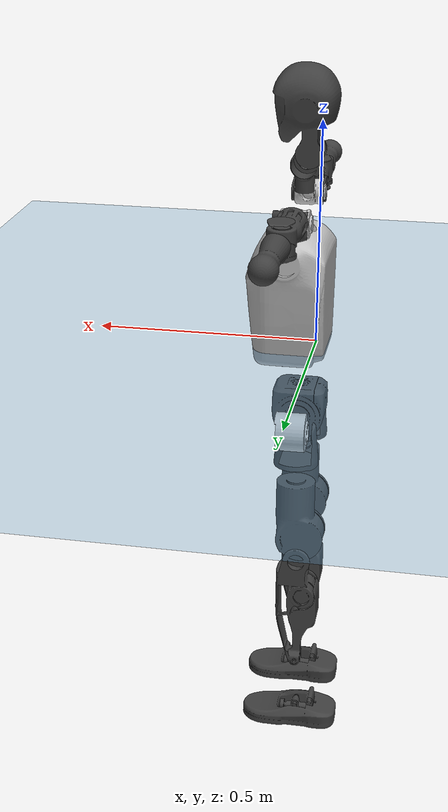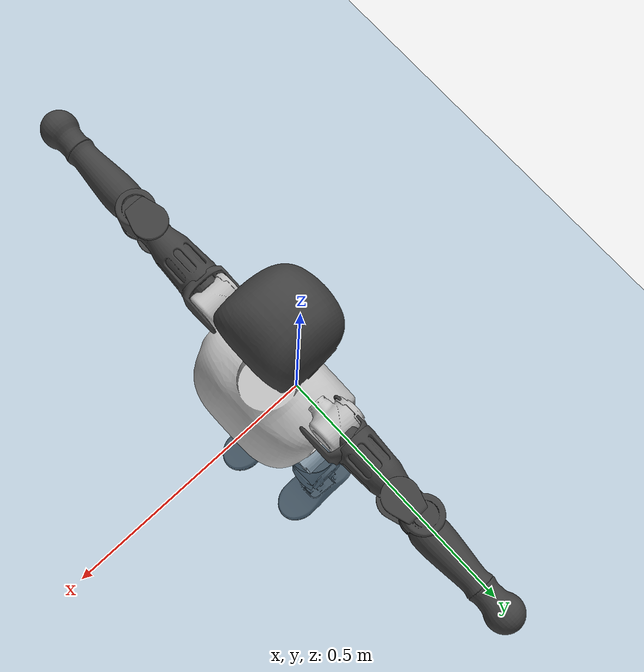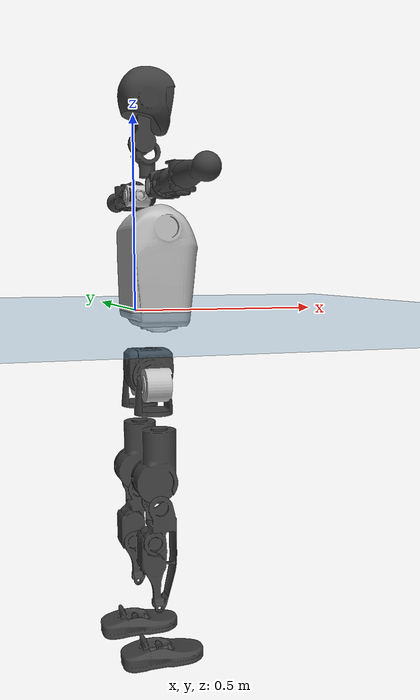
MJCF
<mujoco model="T1">
  <compiler angle="radian" assetdir="assets" balanceinertia="true" inertiafromgeom="false"/>

  <option timestep="0.005" density="1.2" viscosity="2e-05"/>

  <size nkey="1"/>

  <visual>
    <quality shadowsize="8192"/>
    <map shadowclip="0.5"/>
  </visual>

  <default>
    <default class="/">
      <joint armature="0.01" damping="0.01" frictionloss="0.1"/>
      <geom contype="0" conaffinity="0" group="1" solref="-1000 -80"/>
      <site size="0.01 0.005 0.005" group="5"/>
      <general forcelimited="true" biastype="affine" gainprm="25" biasprm="0 -25 -0.6"/>
      <default class="t1">
        <geom rgba="0.25 0.25 0.25 1"/>
        <default class="visual">
          <geom type="mesh" group="2"/>
        </default>
        <default class="collision">
          <geom group="3"/>
        </default>
        <default class="foot">
          <geom size="0.1115 0.05 0.015" type="box" condim="6" group="4" priority="1" solimp="0.015 1 0.015"/>
        </default>
        <default class="reward_collision_sphere">
          <geom group="5" rgba="1 0 0 1"/>
        </default>
      </default>
    </default>
  </default>

  <asset>
    <texture type="skybox" colorspace="auto" name="//unnamed_texture_0" builtin="gradient" rgb1="0.95 0.95 0.95" rgb2="0.95 0.95 0.95" width="100" height="600"/>
    <texture type="2d" colorspace="auto" name="texplane" builtin="checker" rgb1="0.345 0.575 0.748" rgb2="0.345 0.575 0.748" markrgb="1 1 1" width="512" height="512"/>
    <material name="MatPlane" class="/" texture="texplane" texuniform="true" texrepeat="2 2" specular="0.9"/>
    <mesh name="Trunk" class="/" file="Trunk.stl"/>
    <mesh name="H1" class="/" file="H1.stl"/>
    <mesh name="H2" class="/" file="H2.stl"/>
    <mesh name="AL1" class="/" file="AL1.stl"/>
    <mesh name="AL2" class="/" file="AL2.stl"/>
    <mesh name="AL3" class="/" file="AL3.stl"/>
    <mesh name="left_hand_link" class="/" file="left_hand_link.stl"/>
    <mesh name="AR1" class="/" file="AR1.stl"/>
    <mesh name="AR2" class="/" file="AR2.stl"/>
    <mesh name="AR3" class="/" file="AR3.stl"/>
    <mesh name="right_hand_link" class="/" file="right_hand_link.stl"/>
    <mesh name="Waist" class="/" file="Waist.stl"/>
    <mesh name="Hip_Pitch_Left" class="/" file="Hip_Pitch_Left.stl"/>
    <mesh name="Hip_Roll_Left" class="/" file="Hip_Roll_Left.stl"/>
    <mesh name="Hip_Yaw_Left" class="/" file="Hip_Yaw_Left.stl"/>
    <mesh name="Shank_Left" class="/" file="Shank_Left.stl"/>
    <mesh name="Ankle_Cross_Left" class="/" file="Ankle_Cross_Left.stl"/>
    <mesh name="left_foot_link" class="/" file="left_foot_link.stl"/>
    <mesh name="Hip_Pitch_Right" class="/" file="Hip_Pitch_Right.stl"/>
    <mesh name="Hip_Roll_Right" class="/" file="Hip_Roll_Right.stl"/>
    <mesh name="Hip_Yaw_Right" class="/" file="Hip_Yaw_Right.stl"/>
    <mesh name="Shank_Right" class="/" file="Shank_Right.stl"/>
    <mesh name="Ankle_Cross_Right" class="/" file="Ankle_Cross_Right.stl"/>
    <mesh name="right_foot_link" class="/" file="right_foot_link.stl"/>
  </asset>

  <worldbody>
    <geom name="floor" class="/" size="100 100 0.125" type="plane" group="0" material="MatPlane"/>
    <light name="toplight_shadow" class="/" pos="0 0 5" dir="0.0990148 0.0990148 -0.990148" type="directional" ambient="0.04 0.04 0.04" diffuse="0.55 0.55 0.55" specular="0.12 0.12 0.12"/>
    <light name="toplight_fill" class="/" pos="0 0 5" dir="0.0990148 0.0990148 -0.990148" type="directional" castshadow="false" ambient="0.04 0.04 0.04" diffuse="0.3 0.3 0.3" specular="0.08 0.08 0.08"/>
    <body name="trunk" childclass="t1" pos="0.00167185 -0.000759157 -0.00575929" quat="0.999999 -0.000786998 0.000725541 0.00033118">
      <inertial pos="0.0346861 0.0052246 0.148229" quat="0.999934 -0.00146803 -0.0105392 0.00442267" mass="9.05331" diaginertia="0.0038789 0.0198882 0.323297"/>
      <joint name="//unnamed_joint_0" type="free" armature="0" damping="0" frictionloss="0"/>
      <geom name="//unnamed_geom_1" class="visual" rgba="0.76 0.76 0.76 1" mesh="Trunk"/>
      <geom name="//unnamed_geom_2" class="collision" size="0.0685448 0.091393 0.13709" pos="0.0325855 0 0.171886" type="box"/>
      <geom name="//unnamed_geom_3" class="reward_collision_sphere" size="0.105102" pos="0.0325855 0 0.143239"/>
      <geom name="//unnamed_geom_4" class="reward_collision_sphere" size="0.013709" pos="0.0325855 0.0651366 0"/>
      <geom name="//unnamed_geom_5" class="reward_collision_sphere" size="0.013709" pos="0.0325855 -0.0651366 0"/>
      <geom name="//unnamed_geom_6" class="reward_collision_sphere" size="0.013709" pos="0.0325855 0.0819955 0.25783"/>
      <geom name="//unnamed_geom_7" class="reward_collision_sphere" size="0.013709" pos="0.0325855 -0.0819955 0.25783"/>
      <site name="imu" pos="0.0495397 -0.0515575 0.0483912" size="0.0091393"/>
      <camera name="track" pos="0 -1.53263 0" quat="0.707107 0.707107 0 0" mode="trackcom"/>
      <camera name="ego_camera" pos="0.0662572 0 0.601602" quat="-0.5 -0.5 0.5 0.5"/>
      <body name="H1" pos="0.0334921 -0.00075683 0.349399" quat="0.999989 -0.00253505 -0.00371066 -0.00163785">
        <inertial pos="-0.001308 -0.000377934 0.0803343" quat="0.762716 -0.0136209 -0.000343172 0.64659" mass="0.261884" diaginertia="1.11121e-05 5.19205e-05 0.000799738"/>
        <joint name="AAHead_yaw" pos="0 0 0" axis="0.00290386 0.0226747 0.999739" range="-1.54979 1.53397" armature="0.00412456" damping="0.0394807" frictionloss="0.0982032"/>
        <geom name="//unnamed_geom_8" class="visual" mesh="H1"/>
        <body name="H2" pos="-0.0116484 0.00473136 0.0885315" quat="0.999998 -0.000329766 -0.00145304 -0.00117601">
          <inertial pos="0.00166678 0.000977041 0.139583" quat="0.988433 0.107043 -0.0736556 -0.0782153" mass="0.493509" diaginertia="9.97201e-05 0.000504858 0.00996514"/>
          <joint name="Head_pitch" pos="0 0 0" axis="0.029461 -0.999537 -0.0076191" range="-1.22478 0.446693" armature="0.00840475" damping="0.020188" frictionloss="0.0871063"/>
          <geom name="//unnamed_geom_9" class="visual" mesh="H2"/>
          <geom name="//unnamed_geom_10" class="collision" size="0.0731144" pos="0.00543092 0 0.157563"/>
          <geom name="//unnamed_geom_11" class="reward_collision_sphere" size="0.0822537" pos="0.0108618 0 0.143239"/>
        </body>
      </body>
      <body name="AL1" pos="0.0355995 0.0782497 0.312494" quat="0.999994 0.00343886 0.000338545 -0.000211578">
        <inertial pos="-0.00142936 0.0265048 -0.000533296" quat="0.504037 0.49711 -0.502482 0.496326" mass="0.410541" diaginertia="6.02402e-05 0.000349696 0.00181036"/>
        <joint name="Left_Shoulder_Pitch" pos="0 0 0" axis="5.73021e-05 0.999906 0.0137404" stiffness="0.0115438" range="-3.36248 1.19885" armature="0.00969935" damping="0.0146799" frictionloss="0.115496"/>
        <geom name="//unnamed_geom_12" class="visual" rgba="0.76 0.76 0.76 1" mesh="AL1"/>
        <body name="AL2" pos="0.00751838 0.0322314 0.000838964" quat="1 -6.62042e-05 -2.08216e-07 0.000326147">
          <inertial pos="0.00429413 0.0298887 -0.00862875" quat="0.481408 0.516993 -0.487759 0.51289" mass="0.101168" diaginertia="1.7315e-05 9.41419e-05 0.000937494"/>
          <joint name="Left_Shoulder_Roll" pos="0 0 0" axis="-0.999757 0.000313118 0.022048" range="-1.76634 1.54865" armature="0.0131895" damping="0.030172" frictionloss="0.0901577"/>
          <geom name="//unnamed_geom_13" class="visual" mesh="AL2"/>
          <body name="AL3" pos="-0.00541832 0.0442274 0.0082726" quat="1 -0.000296669 0.000326186 5.28079e-05">
            <inertial pos="-0.00552976 0.065297 0.000515916" quat="0.707765 0.706206 -0.017051 0.00718751" mass="0.788802" diaginertia="0.000670122 0.00322134 0.00434049"/>
            <joint name="Left_Elbow_Pitch" pos="0 0 0" axis="0.0545989 -0.998491 0.00590741" stiffness="0.0527207" range="-2.46884 2.11972" armature="0.014309" damping="0.0651311" frictionloss="0.120093"/>
            <geom name="//unnamed_geom_14" class="visual" mesh="AL3"/>
            <geom name="//unnamed_geom_15" class="collision" size="0.0274179 0.0685448" pos="0 0.0383156 0" quat="0.707105 0.707108 0 0" type="cylinder"/>
            <geom name="//unnamed_geom_16" class="reward_collision_sphere" size="0.0329015"/>
            <body name="left_hand_link" pos="0.00741488 0.105903 -0.00230243" quat="0.999999 -0.000810751 -0.000732194 -0.00130546">
              <inertial pos="-0.000500224 0.0845191 -0.00349411" quat="0.708948 0.705261 0.000220436 -0.000165643" mass="0.25254" diaginertia="0.000341776 0.00190094 0.00133311"/>
              <joint name="Left_Elbow_Yaw" pos="0 0 0" axis="-0.0222618 0.0169838 0.999608" stiffness="0.00388325" range="-2.36933 0.0303968" armature="0.00423395" damping="0.012237" frictionloss="0.112878"/>
              <geom name="//unnamed_geom_17" class="visual" mesh="left_hand_link"/>
              <geom name="//unnamed_geom_18" class="collision" size="0.0274179 0.0799689" pos="0 0.0996207 0" quat="0.707105 0.707108 0 0" type="cylinder"/>
              <geom name="//unnamed_geom_19" class="reward_collision_sphere" size="0.0456965"/>
              <geom name="//unnamed_geom_20" class="reward_collision_sphere" size="0.0319876" pos="0 0.0842944 0"/>
              <geom name="//unnamed_geom_21" class="reward_collision_sphere" size="0.0319876" pos="0 0.164757 0"/>
            </body>
          </body>
        </body>
      </body>
      <body name="AR1" pos="0.0390898 -0.0856599 0.315188" quat="1 0.000178267 -0.000238797 -0.000248684">
        <inertial pos="0.0090487 -0.0370003 -0.00633005" quat="0.496909 0.455985 -0.511196 0.532765" mass="0.392833" diaginertia="6.9108e-05 0.000366178 0.0015786"/>
        <joint name="Right_Shoulder_Pitch" pos="0 0 0" axis="0.0149702 -0.999888 -0.000638071" range="-1.23282 3.31927" armature="0.0101339" damping="0" frictionloss="0.119685"/>
        <geom name="//unnamed_geom_22" class="visual" rgba="0.76 0.76 0.76 1" mesh="AR1"/>
        <body name="AR2" pos="0.000965684 -0.0340584 0.00139129" quat="1 -0.000563637 -0.000257789 -0.000634437">
          <inertial pos="0.000808855 -0.0283824 -0.0033655" quat="0.512792 0.486971 -0.51127 0.488372" mass="0.120015" diaginertia="1.93145e-05 8.13593e-05 0.00100597"/>
          <joint name="Right_Shoulder_Roll" pos="0 0 0" axis="-0.999922 0.0124757 0.000821951" range="-1.8199 1.3638" armature="0.0119203" damping="0" frictionloss="0.0936912"/>
          <geom name="//unnamed_geom_23" class="visual" mesh="AR2"/>
          <body name="AR3" pos="-0.00114899 -0.0470549 0.00139057" quat="1 -0.000220735 -0.000340409 5.22354e-05">
            <inertial pos="-0.00106775 -0.055782 -0.00731631" quat="0.70561 0.707857 0.0269133 -0.0181031" mass="0.78457" diaginertia="0.000588546 0.00371493 0.00346347"/>
            <joint name="Right_Elbow_Pitch" pos="0 0 0" axis="0.016429 0.99986 -0.00328496" range="-2.36949 2.40064" armature="0.00844337" damping="0" frictionloss="0.0891682"/>
            <geom name="//unnamed_geom_24" class="visual" mesh="AR3"/>
            <geom name="//unnamed_geom_25" class="collision" size="0.0274179 0.0685448" pos="0 -0.0383156 0" quat="0.707105 0.707108 0 0" type="cylinder"/>
            <geom name="//unnamed_geom_26" class="reward_collision_sphere" size="0.0329015"/>
            <body name="right_hand_link" pos="-0.000977483 -0.114532 0.000574221" quat="0.999999 -0.00023523 0.0015559 0.000143376">
              <inertial pos="0.0015316 -0.084577 0.0083467" quat="0.703036 0.711141 0.00244191 -0.00364912" mass="0.250909" diaginertia="0.000374396 0.00211362 0.00136755"/>
              <joint name="Right_Elbow_Yaw" pos="0 0 0" axis="-0.00395269 -0.00347993 0.999986" range="0.0144063 2.47635" armature="0.0101375" damping="0.0137218" frictionloss="0.0648524"/>
              <geom name="//unnamed_geom_27" class="visual" mesh="right_hand_link"/>
              <geom name="//unnamed_geom_28" class="collision" size="0.0274179 0.0799689" pos="0 -0.0996207 0" quat="0.707105 0.707108 0 0" type="cylinder"/>
              <geom name="//unnamed_geom_29" class="reward_collision_sphere" size="0.0456965"/>
              <geom name="//unnamed_geom_30" class="reward_collision_sphere" size="0.0319876" pos="0 -0.0842944 0"/>
              <geom name="//unnamed_geom_31" class="reward_collision_sphere" size="0.0319876" pos="0 -0.164757 0"/>
            </body>
          </body>
        </body>
      </body>
      <body name="Waist" pos="0.0313008 0.000600217 -0.163291" quat="0.999997 -0.000409195 -0.0010807 0.00195704">
        <inertial pos="0.0133005 -0.00648562 0.0110874" quat="0.983645 0.00503693 -0.179937 0.00634862" mass="2.0511" diaginertia="0.000294528 0.00144871 0.0279115"/>
        <joint name="Waist" pos="0 0 0" axis="-0.0378952 0.0341687 0.998697" range="-1.60595 1.61095" armature="0.0107835" damping="0" frictionloss="0.0839044"/>
        <geom name="//unnamed_geom_32" class="visual" mesh="Waist"/>
        <body name="Hip_Pitch_Left" pos="0.00921121 0.0763028 -0.00623389" quat="0.999982 0.00352354 0.00168949 0.00448806">
          <inertial pos="0.0076686 -0.0156077 -0.028329" quat="0.974626 0.222684 0.0218149 0.00636697" mass="0.841596" diaginertia="9.62737e-05 0.000439828 0.00746386"/>
          <joint name="Left_Hip_Pitch" pos="0 0 0" axis="-0.014882 0.999885 -0.00291105" range="-1.78876 1.6004" armature="0.0126984" damping="0" frictionloss="0.043662"/>
          <geom name="//unnamed_geom_33" class="visual" rgba="0.76 0.76 0.76 1" mesh="Hip_Pitch_Left"/>
          <body name="Hip_Roll_Left" pos="-0.0114883 0.00603711 -0.0170008" quat="0.999983 0.00502587 -0.00115159 0.00278946">
            <inertial pos="-0.00471743 0.00307337 -0.0673229" quat="0.703193 -0.00423108 -0.00747625 0.710948" mass="0.309488" diaginertia="8.10794e-05 0.000402575 0.0029957"/>
            <joint name="Left_Hip_Roll" pos="0 0 0" axis="-0.999999 -0.000882127 -0.00140376" range="-1.57376 0.232771" armature="0.00663334" damping="0" frictionloss="0.0889431"/>
            <geom name="//unnamed_geom_34" class="visual" mesh="Hip_Roll_Left"/>
            <geom name="//unnamed_geom_35" class="reward_collision_sphere" size="0.0502662"/>
            <body name="Hip_Yaw_Left" pos="-0.0037369 -0.00179133 -0.121628" quat="1 3.61549e-05 0.000137246 3.11952e-05">
              <inertial pos="-0.00555209 -0.0116275 -0.13733" quat="0.697207 -0.0282342 -0.0336067 0.715525" mass="1.61512" diaginertia="0.00119286 0.00655913 0.0155142"/>
              <joint name="Left_Hip_Yaw" pos="0 0 0" axis="-0.00923063 0.00400734 -0.999949" range="-1.06284 0.96294" armature="0.00933493" damping="0.00166679" frictionloss="0.0654548"/>
              <geom name="//unnamed_geom_36" class="visual" mesh="Hip_Yaw_Left"/>
              <geom name="//unnamed_geom_37" class="collision" size="0.0456965 0.0731144" type="cylinder"/>
              <body name="Shank_Left" pos="-0.0104428 0.00545867 -0.186916" quat="0.999993 -0.00167857 0.000179145 -0.00333556">
                <inertial pos="-0.00158857 0.00624918 -0.18093" quat="0.993551 2.34204e-05 -0.0513636 0.101086" mass="1.32688" diaginertia="0.00163531 0.00867685 0.011319"/>
                <joint name="Left_Knee_Pitch" pos="0 0 0" axis="-0.00800863 0.999967 -0.00135002" range="-0.0407829 2.50446" armature="0.00570638" damping="0.021354" frictionloss="0.0893657"/>
                <geom name="//unnamed_geom_38" class="visual" mesh="Shank_Left"/>
                <geom name="//unnamed_geom_39" class="collision" size="0.0456965 0.0685448" pos="0 0 -0.171886" type="cylinder"/>
                <geom name="//unnamed_geom_40" class="reward_collision_sphere" size="0.0594055"/>
                <body name="Ankle_Cross_Left" pos="-0.00464869 0.00720817 -0.40294" quat="0.999999 0.00106526 -0.00109788 0.000140214">
                  <inertial pos="-0.00236721 0.0025918 -0.0132225" quat="0.427211 0.578038 0.537384 0.441113" mass="0.0586449" diaginertia="1.23481e-06 6.68925e-06 6.79924e-05"/>
                  <joint name="Left_Ankle_Pitch" pos="0 0 0" axis="-0.00835232 0.999949 0.00573452" range="-0.666536 0.148161" armature="0.00678203" damping="0.0628465" frictionloss="0.0685907"/>
                  <geom name="//unnamed_geom_41" class="visual" mesh="Ankle_Cross_Left"/>
                  <body name="left_foot_link" pos="0.00438041 0.00439138 -0.00850527" quat="0.999987 -0.00489188 -0.000705403 0.00129958">
                    <inertial pos="0.000543983 -8.95786e-05 -0.0114668" quat="0.0276577 0.626514 -0.0219599 0.77861" mass="0.451282" diaginertia="0.000112671 0.00054701 0.0096108"/>
                    <joint name="Left_Ankle_Roll" pos="0 0 0" axis="-0.999136 -0.0329281 -0.0253558" range="-0.418884 0.229279" armature="0.00892624" damping="0.00664536" frictionloss="0.0362667"/>
                    <geom name="//unnamed_geom_42" class="visual" mesh="left_foot_link"/>
                    <geom name="left_foot" class="foot" size="0.101367 0.0624009 0.00754092" pos="0.00543092 0 -0.0214858"/>
                    <geom name="//unnamed_geom_44" class="reward_collision_sphere" size="0.0475244" pos="0.00543092 0 -0.0214858"/>
                    <geom name="//unnamed_geom_45" class="reward_collision_sphere" size="0.0274179" pos="0.0515937 -0.0176252 -0.0214858"/>
                    <geom name="//unnamed_geom_46" class="reward_collision_sphere" size="0.0274179" pos="-0.0380164 -0.0176252 -0.0214858"/>
                    <site name="left_foot" class="foot" pos="0.00543092 0 -0.0214858" size="0.0091393"/>
                  </body>
                </body>
              </body>
            </body>
          </body>
        </body>
        <body name="Hip_Pitch_Right" pos="0.00223734 -0.0809944 0.000127014" quat="1 -0.000102929 0.000293429 0.000112107">
          <inertial pos="0.00315071 0.00653273 -0.0222058" quat="0.973885 -0.218157 0.0350037 -0.0522594" mass="0.917104" diaginertia="9.77823e-05 0.000417813 0.0087937"/>
          <joint name="Right_Hip_Pitch" pos="0 0 0" axis="-0.00271581 -0.999996 0.000485983" stiffness="0.00263119" range="-1.54326 1.88761" armature="0.00752486" damping="0.0088255" frictionloss="0.098308"/>
          <geom name="//unnamed_geom_47" class="visual" rgba="0.76 0.76 0.76 1" mesh="Hip_Pitch_Right"/>
          <body name="Hip_Roll_Right" pos="-0.00544417 0.0029728 -0.0191821" quat="1 5.55883e-05 1.3629e-05 -5.12805e-06">
            <inertial pos="0.00241324 -0.00570331 -0.0773021" quat="0.701184 -0.00433419 -0.0389256 0.711904" mass="0.318387" diaginertia="8.35022e-05 0.000406142 0.0034091"/>
            <joint name="Right_Hip_Roll" pos="0 0 0" axis="-0.999994 -0.00257732 -0.00228243" stiffness="0.0601297" range="-0.205212 1.54539" armature="0.011478" damping="0.00673873" frictionloss="0.0976178"/>
            <geom name="//unnamed_geom_48" class="visual" mesh="Hip_Roll_Right"/>
            <geom name="//unnamed_geom_49" class="reward_collision_sphere" size="0.0502662"/>
            <body name="Hip_Yaw_Right" pos="0.00848792 -0.0113452 -0.116736" quat="1 0.0003561 -0.000111672 -0.000310834">
              <inertial pos="0.0031913 0.000941445 -0.117062" quat="0.707628 -0.0581609 -0.00833196 0.704138" mass="1.48796" diaginertia="0.00124287 0.0067707 0.0158165"/>
              <joint name="Right_Hip_Yaw" pos="0 0 0" axis="-0.00207187 -0.000154849 -0.999998" stiffness="0.00798693" range="-1.17468 1.09463" armature="0.009756" damping="0.00991938" frictionloss="0.0918165"/>
              <geom name="//unnamed_geom_50" class="visual" mesh="Hip_Yaw_Right"/>
              <geom name="//unnamed_geom_51" class="collision" size="0.0456965 0.0731144" type="cylinder"/>
              <body name="Shank_Right" pos="-0.00849202 -0.00692129 -0.198397" quat="0.999999 -0.00053645 0.00114706 0.000412717">
                <inertial pos="-0.0151907 0.000517933 -0.172547" quat="0.999781 -0.0202902 -0.000206012 -0.0050939" mass="1.61666" diaginertia="0.00181833 0.0090741 0.0129865"/>
                <joint name="Right_Knee_Pitch" pos="0 0 0" axis="-0.00997763 -0.999333 -0.0351397" range="-2.36982 -0.0119467" armature="0.00697336" damping="0.0294054" frictionloss="0.0584857"/>
                <geom name="//unnamed_geom_52" class="visual" mesh="Shank_Right"/>
                <geom name="//unnamed_geom_53" class="collision" size="0.0456965 0.0685448" pos="0 0 -0.171886" type="cylinder"/>
                <geom name="//unnamed_geom_54" class="reward_collision_sphere" size="0.0594055"/>
                <body name="Ankle_Cross_Right" pos="0.00414212 0.010466 -0.398833" quat="0.999988 -0.0016908 -0.00363726 -0.00284759">
                  <inertial pos="-0.00194037 0.00184787 -0.0120648" quat="0.438306 0.546961 0.556243 0.446446" mass="0.055792" diaginertia="1.49338e-06 6.56072e-06 6.87753e-05"/>
                  <joint name="Right_Ankle_Pitch" pos="0 0 0" axis="-0.0127263 -0.999918 -0.00151101" range="-0.276093 0.658346" armature="0.00849083" damping="0" frictionloss="0.0930088"/>
                  <geom name="//unnamed_geom_55" class="visual" mesh="Ankle_Cross_Right"/>
                  <body name="right_foot_link" pos="0.000666167 -0.00192422 -0.0117343" quat="0.999993 -9.45072e-05 0.000312078 0.00368477">
                    <inertial pos="0.0071045 0.000210423 -0.013078" quat="-0.00195991 0.626839 0.000436617 0.779146" mass="0.517059" diaginertia="0.000142463 0.000672112 0.013448"/>
                    <joint name="Right_Ankle_Roll" pos="0 0 0" axis="-0.999925 -0.00481737 -0.0112772" range="-0.534908 0.516706" armature="0.00844911" damping="0.0119234" frictionloss="0.0888338"/>
                    <geom name="//unnamed_geom_56" class="visual" mesh="right_foot_link"/>
                    <geom name="right_foot" class="foot" size="0.0978808 0.0587794 0.0128836" pos="0.00543092 0 -0.0214858"/>
                    <geom name="//unnamed_geom_58" class="reward_collision_sphere" size="0.0365572"/>
                    <geom name="//unnamed_geom_59" class="reward_collision_sphere" size="0.0274179" pos="0.00543092 0 -0.0214858"/>
                    <geom name="//unnamed_geom_60" class="reward_collision_sphere" size="0.0274179" pos="0.0515937 0.0176252 -0.0214858"/>
                    <geom name="//unnamed_geom_61" class="reward_collision_sphere" size="0.0274179" pos="-0.0380164 0.0176252 -0.0214858"/>
                    <site name="right_foot" class="foot" pos="0.00543092 0 -0.0214858" size="0.0091393"/>
                  </body>
                </body>
              </body>
            </body>
          </body>
        </body>
      </body>
    </body>
  </worldbody>

  <contact>
    <pair class="/" geom1="floor" geom2="left_foot" name="//unnamed_contact_0"/>
    <pair class="/" geom1="floor" geom2="right_foot" name="//unnamed_contact_1"/>
  </contact>

  <actuator>
    <general name="AAHead_yaw" class="/" joint="AAHead_yaw" forcerange="-6.79614 6.79614" gainprm="28.5675" biasprm="0 -28.5675 -0.610704"/>
    <general name="Head_pitch" class="/" joint="Head_pitch" forcerange="-6.23341 6.23341" gainprm="28.5675" biasprm="0 -28.5675 -0.610704"/>
    <general name="Left_Shoulder_Pitch" class="/" joint="Left_Shoulder_Pitch" forcerange="-16.9237 16.9237" gainprm="28.5675" biasprm="0 -28.5675 -0.610704"/>
    <general name="Left_Shoulder_Roll" class="/" joint="Left_Shoulder_Roll" forcerange="-19.1429 19.1429" gainprm="28.5675" biasprm="0 -28.5675 -0.610704"/>
    <general name="Left_Elbow_Pitch" class="/" joint="Left_Elbow_Pitch" forcerange="-22.9201 22.9201" gainprm="28.5675" biasprm="0 -28.5675 -0.610704"/>
    <general name="Left_Elbow_Yaw" class="/" joint="Left_Elbow_Yaw" forcerange="-11.0339 11.0339" gainprm="28.5675" biasprm="0 -28.5675 -0.610704"/>
    <general name="Right_Shoulder_Pitch" class="/" joint="Right_Shoulder_Pitch" forcerange="-10.7163 10.7163" gainprm="28.5675" biasprm="0 -28.5675 -0.610704"/>
    <general name="Right_Shoulder_Roll" class="/" joint="Right_Shoulder_Roll" forcerange="-18.1243 18.1243" gainprm="28.5675" biasprm="0 -28.5675 -0.610704"/>
    <general name="Right_Elbow_Pitch" class="/" joint="Right_Elbow_Pitch" forcerange="-16.3002 16.3002" gainprm="28.5675" biasprm="0 -28.5675 -0.610704"/>
    <general name="Right_Elbow_Yaw" class="/" joint="Right_Elbow_Yaw" forcerange="-17.1508 17.1508" gainprm="28.5675" biasprm="0 -28.5675 -0.610704"/>
    <general name="Waist" class="/" joint="Waist" forcerange="-26.2981 26.2981" gainprm="28.5675" biasprm="0 -28.5675 -0.610704"/>
    <general name="Left_Hip_Pitch" class="/" joint="Left_Hip_Pitch" forcerange="-45.3647 45.3647" gainprm="28.5675" biasprm="0 -28.5675 -0.610704"/>
    <general name="Left_Hip_Roll" class="/" joint="Left_Hip_Roll" forcerange="-17.7935 17.7935" gainprm="28.5675" biasprm="0 -28.5675 -0.610704"/>
    <general name="Left_Hip_Yaw" class="/" joint="Left_Hip_Yaw" forcerange="-38.3258 38.3258" gainprm="28.5675" biasprm="0 -28.5675 -0.610704"/>
    <general name="Left_Knee_Pitch" class="/" joint="Left_Knee_Pitch" forcerange="-76.3457 76.3457" gainprm="28.5675" biasprm="0 -28.5675 -0.610704"/>
    <general name="Left_Ankle_Pitch" class="/" joint="Left_Ankle_Pitch" forcerange="-19.3673 19.3673" gainprm="28.5675" biasprm="0 -28.5675 -0.610704"/>
    <general name="Left_Ankle_Roll" class="/" joint="Left_Ankle_Roll" forcerange="-13.4383 13.4383" gainprm="28.5675" biasprm="0 -28.5675 -0.610704"/>
    <general name="Right_Hip_Pitch" class="/" joint="Right_Hip_Pitch" forcerange="-38.7426 38.7426" gainprm="28.5675" biasprm="0 -28.5675 -0.610704"/>
    <general name="Right_Hip_Roll" class="/" joint="Right_Hip_Roll" forcerange="-26.0284 26.0284" gainprm="28.5675" biasprm="0 -28.5675 -0.610704"/>
    <general name="Right_Hip_Yaw" class="/" joint="Right_Hip_Yaw" forcerange="-23.2373 23.2373" gainprm="28.5675" biasprm="0 -28.5675 -0.610704"/>
    <general name="Right_Knee_Pitch" class="/" joint="Right_Knee_Pitch" forcerange="-54.0279 54.0279" gainprm="28.5675" biasprm="0 -28.5675 -0.610704"/>
    <general name="Right_Ankle_Pitch" class="/" joint="Right_Ankle_Pitch" forcerange="-23.9956 23.9956" gainprm="28.5675" biasprm="0 -28.5675 -0.610704"/>
    <general name="Right_Ankle_Roll" class="/" joint="Right_Ankle_Roll" forcerange="-13.5507 13.5507" gainprm="28.5675" biasprm="0 -28.5675 -0.610704"/>
  </actuator>

  <sensor>
    <gyro site="imu" name="imu_angular_velocity"/>
    <velocimeter site="imu" name="imu_linear_velocity"/>
    <framelinvel objtype="site" objname="left_foot" name="left_foot_global_linear_velocity"/>
    <framelinvel objtype="site" objname="right_foot" name="right_foot_global_linear_velocity"/>
  </sensor>

  <keyframe>
    <key name="home" qpos="0 0 0.6385 1 0 0 0 0 0 0 1.4 0 -0.4 0 -1.4 0 0.4 0 -0.4 0 0 0.8 -0.4 0 0.4 0 0 -0.8 0.4 0"/>
  </keyframe>
</mujoco>
